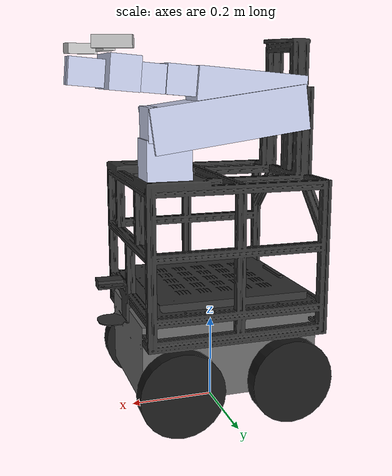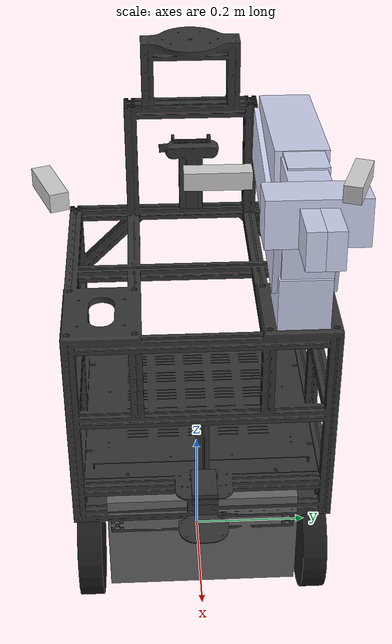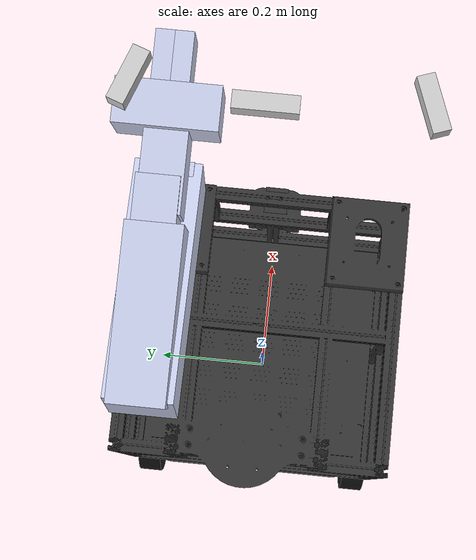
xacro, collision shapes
<?xml version="1.0"?>
<robot xmlns:xacro="http://www.ros.org/wiki/xacro" name="fire_robot">

  <xacro:include filename="$(find fire_robot_description)/urdf/piper_arm_actual.xacro"/>

  <xacro:property name="base_length"  value="0.420"/>
  <xacro:property name="base_width"   value="0.310"/>
  <xacro:property name="base_height"  value="0.184"/>
  <xacro:property name="wheel_radius" value="0.098"/>
  <xacro:property name="wheel_width"  value="0.040"/>
  <xacro:property name="wheelbase"   value="0.262"/>
  <xacro:property name="track"       value="0.37559"/>
  <xacro:property name="base_mass"    value="16.523"/>
  <xacro:property name="wheel_mass"   value="0.477"/>
  <!-- Supplied Clearpath J100 / ROAS2 reference coordinates, expressed in
       base_link. PIPER is centered laterally because this project uses one arm. -->
  <xacro:property name="base_footprint_offset" value="0.0655"/>
  <xacro:property name="wheel_vertical_offset" value="0.0345"/>
  <!-- Mount the perception camera on the forward mast face. The supplied
       bracket mesh origin is behind the cage, where a simulated optical
       sensor is fully occluded by the frame. -->
  <xacro:property name="camera_x"     value="0.2500"/>
  <xacro:property name="camera_y"     value="0.0175"/>
  <xacro:property name="camera_z"     value="0.7890"/>
  <xacro:property name="lidar_x"      value="0.25"/>
  <xacro:property name="lidar_z"      value="0.248"/>
  <xacro:property name="piper_mount_x" value="0.163"/>
  <xacro:property name="piper_mount_y" value="0.15"/>
  <xacro:property name="piper_mount_z" value="0.509"/>
  <xacro:property name="top_structure_z" value="-0.065"/>
  <xacro:property name="camera_pitch" value="0.0"/>
  <xacro:arg name="enable_sim_depth_camera" default="false"/>
  <xacro:arg name="use_piper_ros2_control" default="false"/>

  <xacro:macro name="box_inertia" params="m x y z">
    <inertial>
      <mass value="${m}"/>
      <inertia ixx="${m*(y*y+z*z)/12}" ixy="0" ixz="0"
               iyy="${m*(x*x+z*z)/12}" iyz="0"
               izz="${m*(x*x+y*y)/12}"/>
    </inertial>
  </xacro:macro>

  <xacro:macro name="cylinder_inertia" params="m r h">
    <inertial>
      <mass value="${m}"/>
      <inertia ixx="${m*(3*r*r+h*h)/12}" ixy="0" ixz="0"
               iyy="${m*(3*r*r+h*h)/12}" iyz="0"
               izz="${m*r*r/2}"/>
    </inertial>
  </xacro:macro>

  <!-- ============ base_footprint ============ -->
  <link name="base_footprint"/>

  <joint name="base_footprint_joint" type="fixed">
    <parent link="base_footprint"/>
    <child  link="base_link"/>
    <origin xyz="0 0 ${base_footprint_offset}" rpy="0 0 0"/>
  </joint>

  <!-- ============ 모바일 베이스 ============ -->
  <link name="base_link">
    <inertial>
      <origin xyz="0.012 0.002 0.067" rpy="0 0 0"/>
      <mass value="${base_mass}"/>
      <inertia ixx="0.3136" ixy="-0.0008" ixz="0.0164"
               iyy="0.3922" iyz="-0.0009" izz="0.4485"/>
    </inertial>
    <visual>
      <origin xyz="0 0 -0.0655" rpy="${pi/2} 0 ${pi/2}"/>
      <geometry>
        <mesh filename="package://fire_robot_description/meshes/j100/j100_base.stl"/>
      </geometry>
      <material name="gray"><color rgba="0.4 0.4 0.4 1.0"/></material>
    </visual>
    <collision>
      <origin xyz="0 0 ${base_height/2}" rpy="0 0 0"/>
      <geometry>
        <box size="${base_length} ${base_width} ${base_height}"/>
      </geometry>
    </collision>
  </link>

  <!-- Supplied ROAS2 frame that physically supports the camera and PIPER. -->
  <link name="top_structure">
    <visual>
      <geometry>
        <mesh filename="package://fire_robot_description/meshes/roas2/BASE_FRAME.stl"/>
      </geometry>
      <material name="dark_gray"><color rgba="0.2 0.2 0.2 1.0"/></material>
    </visual>
    <collision>
      <geometry>
        <mesh filename="package://fire_robot_description/meshes/roas2/BASE_FRAME.stl"/>
      </geometry>
    </collision>
  </link>
  <joint name="top_structure_joint" type="fixed">
    <parent link="base_link"/>
    <child link="top_structure"/>
    <origin xyz="0 0 ${top_structure_z}" rpy="0 0 0"/>
  </joint>

  <link name="camera_bracket_link">
    <visual>
      <geometry>
        <mesh filename="package://fire_robot_description/meshes/roas2/D435_BRACKET.stl"/>
      </geometry>
      <material name="dark_gray"/>
    </visual>
    <collision>
      <geometry>
        <mesh filename="package://fire_robot_description/meshes/roas2/D435_BRACKET.stl"/>
      </geometry>
    </collision>
  </link>
  <joint name="camera_bracket_joint" type="fixed">
    <parent link="top_structure"/>
    <child link="camera_bracket_link"/>
    <origin xyz="-0.2 0 0.564" rpy="0 0 0"/>
  </joint>

  <!-- ============ 바퀴 매크로 ============ -->
  <xacro:macro name="wheel" params="name x_pos y_pos">
    <link name="${name}_wheel">
      <inertial>
        <origin xyz="0 0 0" rpy="0 0 0"/>
        <mass value="${wheel_mass}"/>
        <inertia ixx="0.0013" ixy="0" ixz="0"
                 iyy="0.0024" iyz="0" izz="0.0013"/>
      </inertial>
      <visual>
        <origin xyz="0 0 0" rpy="${pi/2} 0 0"/>
        <geometry>
          <mesh filename="package://fire_robot_description/meshes/j100/j100_wheel.stl"/>
        </geometry>
        <material name="black"><color rgba="0.1 0.1 0.1 1.0"/></material>
      </visual>
      <collision>
        <origin xyz="0 0 0" rpy="${pi/2} 0 0"/>
        <geometry>
          <cylinder radius="${wheel_radius}" length="${wheel_width}"/>
        </geometry>
      </collision>
    </link>

    <joint name="${name}_wheel_joint" type="continuous">
      <parent link="base_link"/>
      <child  link="${name}_wheel"/>
      <origin xyz="${x_pos} ${y_pos} ${wheel_vertical_offset}" rpy="0 0 0"/>
      <axis xyz="0 1 0"/>
    </joint>
  </xacro:macro>

  <xacro:wheel name="front_left"  x_pos="${wheelbase/2}" y_pos="${track/2}"/>
  <xacro:wheel name="front_right" x_pos="${wheelbase/2}" y_pos="${-track/2}"/>
  <xacro:wheel name="rear_left"   x_pos="${-wheelbase/2}" y_pos="${track/2}"/>
  <xacro:wheel name="rear_right"  x_pos="${-wheelbase/2}" y_pos="${-track/2}"/>

  <gazebo reference="front_left_wheel"><mu1>0.5</mu1><mu2>0.5</mu2><fdir1>1 0 0</fdir1></gazebo>
  <gazebo reference="front_right_wheel"><mu1>0.5</mu1><mu2>0.5</mu2><fdir1>1 0 0</fdir1></gazebo>
  <gazebo reference="rear_left_wheel"><mu1>0.5</mu1><mu2>0.5</mu2><fdir1>1 0 0</fdir1></gazebo>
  <gazebo reference="rear_right_wheel"><mu1>0.5</mu1><mu2>0.5</mu2><fdir1>1 0 0</fdir1></gazebo>

  <!-- ============ 2D LiDAR ============ -->
  <link name="lidar_link">
    <visual>
      <geometry><box size="0.06 0.04 0.02"/></geometry>
      <material name="dark_gray"><color rgba="0.2 0.2 0.2 1.0"/></material>
    </visual>
    <collision>
      <geometry><box size="0.06 0.04 0.02"/></geometry>
    </collision>
    <inertial>
      <mass value="0.20"/>
      <inertia ixx="0.0001" ixy="0" ixz="0" iyy="0.0001" iyz="0" izz="0.0001"/>
    </inertial>
  </link>

  <joint name="lidar_joint" type="fixed">
    <parent link="top_structure"/>
    <child  link="lidar_link"/>
    <origin xyz="${lidar_x} 0 ${lidar_z - top_structure_z}" rpy="0 0 0"/>
  </joint>

  <!-- ============ RGB-D 카메라 마운트 ============ -->
  <link name="camera_link">
    <visual>
      <geometry><box size="0.02505 0.090 0.025"/></geometry>
      <material name="silver"><color rgba="0.8 0.8 0.8 1.0"/></material>
    </visual>
    <collision>
      <geometry><box size="0.02505 0.090 0.025"/></geometry>
    </collision>
    <inertial>
      <mass value="0.564"/>
      <inertia ixx="0.003881243" ixy="0" ixz="0"
               iyy="0.000498940" iyz="0" izz="0.003879257"/>
    </inertial>
  </link>

  <joint name="camera_joint" type="fixed">
    <parent link="top_structure"/>
    <child  link="camera_link"/>
    <origin xyz="${camera_x} ${camera_y} ${camera_z - top_structure_z}"
            rpy="0 ${camera_pitch} 0"/>
  </joint>

  <!-- 카메라 광학 프레임 (ROS 컨벤션: Z 앞, X 오른쪽) -->
  <link name="camera_color_optical_frame"/>
  <joint name="camera_optical_joint" type="fixed">
    <parent link="camera_link"/>
    <child  link="camera_color_optical_frame"/>
    <origin xyz="0 0 0" rpy="${-pi/2} 0 ${-pi/2}"/>
  </joint>

  <!-- 전방 좌/우 보조 카메라: 벽면 문을 주행 중 미리 보기 위한 45도 시야 -->
  <link name="camera_front_left_link">
    <visual>
      <geometry><box size="0.025 0.080 0.025"/></geometry>
      <material name="silver"><color rgba="0.8 0.8 0.8 1.0"/></material>
    </visual>
    <collision>
      <geometry><box size="0.025 0.080 0.025"/></geometry>
    </collision>
    <inertial>
      <mass value="0.060"/>
      <inertia ixx="0.0001" ixy="0" ixz="0" iyy="0.0001" iyz="0" izz="0.0001"/>
    </inertial>
  </link>

  <joint name="camera_front_left_joint" type="fixed">
    <parent link="top_structure"/>
    <child  link="camera_front_left_link"/>
    <origin xyz="${camera_x + 0.02} 0.20 ${camera_z - top_structure_z}" rpy="0 ${camera_pitch} 1.22173"/>
  </joint>

  <link name="camera_front_left_optical_frame"/>
  <joint name="camera_front_left_optical_joint" type="fixed">
    <parent link="camera_front_left_link"/>
    <child  link="camera_front_left_optical_frame"/>
    <origin xyz="0 0 0" rpy="${-pi/2} 0 ${-pi/2}"/>
  </joint>

  <link name="camera_front_right_link">
    <visual>
      <geometry><box size="0.025 0.080 0.025"/></geometry>
      <material name="silver"><color rgba="0.8 0.8 0.8 1.0"/></material>
    </visual>
    <collision>
      <geometry><box size="0.025 0.080 0.025"/></geometry>
    </collision>
    <inertial>
      <mass value="0.060"/>
      <inertia ixx="0.0001" ixy="0" ixz="0" iyy="0.0001" iyz="0" izz="0.0001"/>
    </inertial>
  </link>

  <joint name="camera_front_right_joint" type="fixed">
    <parent link="top_structure"/>
    <child  link="camera_front_right_link"/>
    <origin xyz="${camera_x + 0.02} -0.20 ${camera_z - top_structure_z}" rpy="0 ${camera_pitch} -1.22173"/>
  </joint>

  <link name="camera_front_right_optical_frame"/>
  <joint name="camera_front_right_optical_joint" type="fixed">
    <parent link="camera_front_right_link"/>
    <child  link="camera_front_right_optical_frame"/>
    <origin xyz="0 0 0" rpy="${-pi/2} 0 ${-pi/2}"/>
  </joint>

  <!-- ============ Depth Camera (RealSense D435 뎁스 모듈) ============ -->
  <!-- D435의 뎁스 모듈은 컬러 모듈과 같은 하우징 내 약 17.5mm 오프셋 -->
  <link name="depth_camera_link">
    <inertial>
      <mass value="0.001"/>
      <inertia ixx="0.000001" ixy="0" ixz="0"
               iyy="0.000001" iyz="0" izz="0.000001"/>
    </inertial>
  </link>
  <joint name="depth_camera_joint" type="fixed">
    <parent link="camera_link"/>
    <child  link="depth_camera_link"/>
    <origin xyz="0 0 0" rpy="0 0 0"/>
  </joint>

  <!-- Depth 광학 프레임 -->
  <link name="depth_optical_frame"/>
  <joint name="depth_optical_joint" type="fixed">
    <parent link="depth_camera_link"/>
    <child  link="depth_optical_frame"/>
    <origin xyz="0 0 0" rpy="${-pi/2} 0 ${-pi/2}"/>
  </joint>

  <!-- Legacy simplified arm is retained only as source history and is omitted
       from generated URDF. The actual PIPER macro below is authoritative. -->
  <xacro:if value="false">
  <!-- ============ PIPER 로봇팔 (비활성 레거시 모델) ============ -->
  <!-- 팔 베이스를 모바일 베이스 위 중앙에 탑재 -->
  <link name="arm_base_link">
    <visual>
      <geometry><cylinder radius="0.04" length="0.06"/></geometry>
      <material name="orange"><color rgba="0.9 0.5 0.1 1.0"/></material>
    </visual>
    <collision>
      <geometry><cylinder radius="0.04" length="0.06"/></geometry>
    </collision>
    <inertial>
      <mass value="0.5"/>
      <inertia ixx="0.001" ixy="0" ixz="0" iyy="0.001" iyz="0" izz="0.001"/>
    </inertial>
  </link>

  <joint name="arm_base_joint" type="fixed">
    <parent link="base_link"/>
    <child  link="arm_base_link"/>
    <origin xyz="0.05 0 ${base_height/2 + 0.03}" rpy="0 0 0"/>
  </joint>

  <!-- Joint 1 - 팔 회전 (Z축) -->
  <link name="arm_link1">
    <visual><geometry><cylinder radius="0.03" length="0.12"/></geometry>
      <material name="orange"><color rgba="0.9 0.5 0.1 1.0"/></material></visual>
    <collision><geometry><cylinder radius="0.03" length="0.12"/></geometry></collision>
    <xacro:cylinder_inertia m="0.4" r="0.03" h="0.12"/>
  </link>
  <joint name="joint1" type="revolute">
    <parent link="arm_base_link"/>
    <child  link="arm_link1"/>
    <origin xyz="0 0 0.06" rpy="0 0 0"/>
    <axis xyz="0 0 1"/>
    <limit lower="-3.14" upper="3.14" effort="30" velocity="1.5"/>
  </joint>

  <!-- Joint 2 - 어깨 (Y축) -->
  <link name="arm_link2">
    <visual><geometry><box size="0.06 0.04 0.25"/></geometry>
      <material name="orange"><color rgba="0.9 0.5 0.1 1.0"/></material></visual>
    <collision><geometry><box size="0.06 0.04 0.25"/></geometry></collision>
    <xacro:box_inertia m="0.5" x="0.06" y="0.04" z="0.25"/>
  </link>
  <joint name="joint2" type="revolute">
    <parent link="arm_link1"/>
    <child  link="arm_link2"/>
    <origin xyz="0 0 0.06" rpy="0 0 0"/>
    <axis xyz="0 1 0"/>
    <limit lower="-2.09" upper="2.09" effort="30" velocity="1.5"/>
  </joint>

  <!-- Joint 3 - 팔꿈치 (Y축) -->
  <link name="arm_link3">
    <visual><geometry><box size="0.05 0.04 0.22"/></geometry>
      <material name="orange"><color rgba="0.9 0.5 0.1 1.0"/></material></visual>
    <collision><geometry><box size="0.05 0.04 0.22"/></geometry></collision>
    <xacro:box_inertia m="0.4" x="0.05" y="0.04" z="0.22"/>
  </link>
  <joint name="joint3" type="revolute">
    <parent link="arm_link2"/>
    <child  link="arm_link3"/>
    <origin xyz="0 0 0.25" rpy="0 0 0"/>
    <axis xyz="0 1 0"/>
    <limit lower="-2.44" upper="2.44" effort="20" velocity="1.5"/>
  </joint>

  <!-- Joint 4 - 손목 Roll (X축) -->
  <link name="arm_link4">
    <visual><geometry><cylinder radius="0.025" length="0.10"/></geometry>
      <material name="orange"><color rgba="0.9 0.5 0.1 1.0"/></material></visual>
    <collision><geometry><cylinder radius="0.025" length="0.10"/></geometry></collision>
    <xacro:cylinder_inertia m="0.2" r="0.025" h="0.10"/>
  </link>
  <joint name="joint4" type="revolute">
    <parent link="arm_link3"/>
    <child  link="arm_link4"/>
    <origin xyz="0 0 0.22" rpy="0 0 0"/>
    <axis xyz="1 0 0"/>
    <limit lower="-3.14" upper="3.14" effort="10" velocity="2.0"/>
  </joint>

  <!-- Joint 5 - 손목 Pitch (Y축) -->
  <link name="arm_link5">
    <visual><geometry><cylinder radius="0.025" length="0.09"/></geometry>
      <material name="orange"><color rgba="0.9 0.5 0.1 1.0"/></material></visual>
    <collision><geometry><cylinder radius="0.025" length="0.09"/></geometry></collision>
    <xacro:cylinder_inertia m="0.2" r="0.025" h="0.09"/>
  </link>
  <joint name="joint5" type="revolute">
    <parent link="arm_link4"/>
    <child  link="arm_link5"/>
    <origin xyz="0 0 0.10" rpy="0 0 0"/>
    <axis xyz="0 1 0"/>
    <limit lower="-1.57" upper="1.57" effort="10" velocity="2.0"/>
  </joint>

  <!-- Joint 6 - 손목 Yaw (Z축) -->
  <link name="arm_link6">
    <visual><geometry><cylinder radius="0.02" length="0.07"/></geometry>
      <material name="orange"><color rgba="0.9 0.5 0.1 1.0"/></material></visual>
    <collision><geometry><cylinder radius="0.02" length="0.07"/></geometry></collision>
    <xacro:cylinder_inertia m="0.15" r="0.02" h="0.07"/>
  </link>
  <joint name="joint6" type="revolute">
    <parent link="arm_link5"/>
    <child  link="arm_link6"/>
    <origin xyz="0 0 0.09" rpy="0 0 0"/>
    <axis xyz="0 0 1"/>
    <limit lower="-3.14" upper="3.14" effort="5" velocity="2.0"/>
  </joint>

  <!-- ============ 그리퍼 ============ -->
  <link name="gripper_base_link">
    <visual><geometry><box size="0.04 0.07 0.04"/></geometry>
      <material name="silver"><color rgba="0.8 0.8 0.8 1.0"/></material></visual>
    <collision><geometry><box size="0.04 0.07 0.04"/></geometry></collision>
    <xacro:box_inertia m="0.1" x="0.04" y="0.07" z="0.04"/>
  </link>
  <joint name="gripper_base_joint" type="fixed">
    <parent link="arm_link6"/>
    <child  link="gripper_base_link"/>
    <origin xyz="0 0 0.07" rpy="0 0 0"/>
  </joint>

  <link name="gripper_finger_left">
    <visual><geometry><box size="0.015 0.01 0.06"/></geometry>
      <material name="silver"><color rgba="0.8 0.8 0.8 1.0"/></material></visual>
    <collision><geometry><box size="0.015 0.01 0.06"/></geometry></collision>
    <xacro:box_inertia m="0.02" x="0.015" y="0.01" z="0.06"/>
  </link>
  <joint name="gripper_left_joint" type="prismatic">
    <parent link="gripper_base_link"/>
    <child  link="gripper_finger_left"/>
    <origin xyz="0 0.025 0.03" rpy="0 0 0"/>
    <axis xyz="0 1 0"/>
    <limit lower="0.0" upper="0.04" effort="5" velocity="0.1"/>
  </joint>

  <link name="gripper_finger_right">
    <visual><geometry><box size="0.015 0.01 0.06"/></geometry>
      <material name="silver"><color rgba="0.8 0.8 0.8 1.0"/></material></visual>
    <collision><geometry><box size="0.015 0.01 0.06"/></geometry></collision>
    <xacro:box_inertia m="0.02" x="0.015" y="0.01" z="0.06"/>
  </link>
  <joint name="gripper_right_joint" type="prismatic">
    <parent link="gripper_base_link"/>
    <child  link="gripper_finger_right"/>
    <origin xyz="0 -0.025 0.03" rpy="0 0 0"/>
    <axis xyz="0 -1 0"/>
    <limit lower="0.0" upper="0.04" effort="5" velocity="0.1"/>
  </joint>

  <gazebo reference="gripper_finger_left">
    <mu1>8.0</mu1>
    <mu2>8.0</mu2>
    <kp>1000000.0</kp>
    <kd>50.0</kd>
    <minDepth>0.001</minDepth>
  </gazebo>

  <gazebo reference="gripper_finger_right">
    <mu1>8.0</mu1>
    <mu2>8.0</mu2>
    <kp>1000000.0</kp>
    <kd>50.0</kd>
    <minDepth>0.001</minDepth>
  </gazebo>
  </xacro:if>

  <xacro:piper_arm_actual
    parent="top_structure"
    mount_xyz="${piper_mount_x} ${piper_mount_y} ${piper_mount_z - top_structure_z}"
    mount_rpy="0 0 0"/>

  <!-- ============ Gazebo Ignition 플러그인 ============ -->

  <!-- 2D LiDAR range sensor (Gazebo uses gpu_lidar internally) -->
  <gazebo reference="lidar_link">
    <sensor name="lidar_sensor" type="gpu_lidar">
      <always_on>true</always_on>
      <visualize>false</visualize>
      <update_rate>12</update_rate>
      <topic>scan</topic>
      <gz_frame_id>lidar_link</gz_frame_id>
      <lidar>
        <scan>
          <horizontal>
            <samples>720</samples>
            <resolution>1</resolution>
            <min_angle>-3.14159</min_angle>
            <max_angle>3.14159</max_angle>
          </horizontal>
          <vertical>
            <samples>1</samples>
            <resolution>1</resolution>
            <min_angle>0</min_angle>
            <max_angle>0</max_angle>
          </vertical>
        </scan>
        <range>
          <min>0.15</min>
          <max>12.0</max>
          <resolution>0.05</resolution>
        </range>
        <noise type="gaussian">
          <mean>0.0</mean>
          <stddev>0.05</stddev>
        </noise>
      </lidar>
    </sensor>
  </gazebo>

  <!-- RGB 카메라 (Ignition camera 센서) -->
  <gazebo reference="camera_link">
    <sensor name="rgb_camera" type="camera">
      <always_on>true</always_on>
      <visualize>false</visualize>
      <update_rate>15</update_rate>
      <topic>camera_raw</topic>
      <gz_frame_id>camera_color_optical_frame</gz_frame_id>
      <camera name="rgb">
        <camera_info_topic>/camera_raw/camera_info</camera_info_topic>
        <horizontal_fov>1.204</horizontal_fov>
        <image>
          <width>320</width>
          <height>240</height>
          <format>R8G8B8</format>
        </image>
        <clip>
          <near>0.1</near>
          <far>10.0</far>
        </clip>
        <noise>
          <type>gaussian</type>
          <mean>0.0</mean>
          <stddev>0.007</stddev>
        </noise>
      </camera>
    </sensor>
  </gazebo>

  <!-- 전방 좌측 카메라 -->
  <gazebo reference="camera_front_left_link">
    <sensor name="rgb_camera_front_left" type="camera">
      <always_on>true</always_on>
      <visualize>false</visualize>
      <update_rate>6</update_rate>
      <topic>camera_front_left_raw</topic>
      <gz_frame_id>camera_front_left_optical_frame</gz_frame_id>
      <camera name="rgb_front_left">
        <camera_info_topic>/camera_front_left_raw/camera_info</camera_info_topic>
        <horizontal_fov>1.204</horizontal_fov>
        <image>
          <width>320</width>
          <height>240</height>
          <format>R8G8B8</format>
        </image>
        <clip>
          <near>0.1</near>
          <far>10.0</far>
        </clip>
        <noise>
          <type>gaussian</type>
          <mean>0.0</mean>
          <stddev>0.007</stddev>
        </noise>
      </camera>
    </sensor>
  </gazebo>

  <!-- 전방 우측 카메라 -->
  <gazebo reference="camera_front_right_link">
    <sensor name="rgb_camera_front_right" type="camera">
      <always_on>true</always_on>
      <visualize>false</visualize>
      <update_rate>6</update_rate>
      <topic>camera_front_right_raw</topic>
      <gz_frame_id>camera_front_right_optical_frame</gz_frame_id>
      <camera name="rgb_front_right">
        <camera_info_topic>/camera_front_right_raw/camera_info</camera_info_topic>
        <horizontal_fov>1.204</horizontal_fov>
        <image>
          <width>320</width>
          <height>240</height>
          <format>R8G8B8</format>
        </image>
        <clip>
          <near>0.1</near>
          <far>10.0</far>
        </clip>
        <noise>
          <type>gaussian</type>
          <mean>0.0</mean>
          <stddev>0.007</stddev>
        </noise>
      </camera>
    </sensor>
  </gazebo>

  <!-- D435 depth imager. RGB is provided by the co-located camera above;
       Fortress depth_camera requires an R_FLOAT32 image buffer. -->
  <xacro:if value="$(arg enable_sim_depth_camera)">
  <gazebo reference="depth_camera_link">
    <sensor name="depth_camera" type="depth_camera">
      <always_on>true</always_on>
      <visualize>false</visualize>
      <update_rate>10</update_rate>
      <topic>depth_camera</topic>
      <gz_frame_id>depth_optical_frame</gz_frame_id>
      <camera name="depth">
        <camera_info_topic>/depth_camera/camera_info</camera_info_topic>
        <horizontal_fov>1.204</horizontal_fov>
        <image>
          <width>320</width>
          <height>240</height>
          <format>R_FLOAT32</format>
        </image>
        <clip>
          <near>0.1</near>
          <far>10.0</far>
        </clip>
        <noise>
          <type>gaussian</type>
          <mean>0.0</mean>
          <stddev>0.003</stddev>
        </noise>
      </camera>
    </sensor>
  </gazebo>
  </xacro:if>

  <!-- J100 base drive is independent from the PIPER arm controller, matching
       the separate Clearpath and AgileX hardware interfaces. -->
  <gazebo>
    <plugin filename="ignition-gazebo-diff-drive-system"
            name="ignition::gazebo::systems::DiffDrive">
        <left_joint>front_left_wheel_joint</left_joint>
        <left_joint>rear_left_wheel_joint</left_joint>
        <right_joint>front_right_wheel_joint</right_joint>
        <right_joint>rear_right_wheel_joint</right_joint>
        <!-- Clearpath j100 reference: track=0.37559 m, wheel_radius=0.098 m -->
        <wheel_separation>0.37559</wheel_separation>
        <wheel_radius>0.098</wheel_radius>
        <odom_publish_frequency>20</odom_publish_frequency>
        <topic>cmd_vel</topic>
        <odom_topic>wheel_odom</odom_topic>
        <tf_topic>wheel_tf</tf_topic>
        <frame_id>odom</frame_id>
        <child_frame_id>base_footprint</child_frame_id>
        <max_linear_acceleration>1.0</max_linear_acceleration>
    </plugin>
  </gazebo>

  <gazebo>
    <plugin filename="ignition-gazebo-odometry-publisher-system"
            name="ignition::gazebo::systems::OdometryPublisher">
      <odom_frame>odom</odom_frame>
      <robot_base_frame>base_footprint</robot_base_frame>
      <odom_topic>odom</odom_topic>
      <tf_topic>tf</tf_topic>
      <odom_publish_frequency>30</odom_publish_frequency>
      <dimensions>2</dimensions>
    </plugin>
  </gazebo>

  <!-- Native joint topics remain available for the archived navigation setup. -->
  <xacro:unless value="$(arg use_piper_ros2_control)">
  <gazebo>
    <plugin filename="gz-sim-joint-state-publisher-system"
            name="gz::sim::systems::JointStatePublisher">
      <topic>joint_states</topic>
    </plugin>
  </gazebo>
  </xacro:unless>

  <!-- Fortress-native position servos provide the physical-contact test path.
       Real hardware keeps the separate AgileX controller/MoveIt path. -->
  <xacro:unless value="$(arg use_piper_ros2_control)">
  <gazebo>
    <plugin filename="ignition-gazebo-joint-position-controller-system"
            name="gz::sim::systems::JointPositionController">
      <joint_name>joint1</joint_name>
      <topic>/fire_robot/sim_arm/joint1_cmd</topic>
      <p_gain>80.0</p_gain>
      <d_gain>1.5</d_gain>
      <cmd_max>60</cmd_max>
      <cmd_min>-60</cmd_min>
    </plugin>
    <plugin filename="ignition-gazebo-joint-position-controller-system"
            name="gz::sim::systems::JointPositionController">
      <joint_name>joint2</joint_name>
      <topic>/fire_robot/sim_arm/joint2_cmd</topic>
      <p_gain>80.0</p_gain>
      <d_gain>1.5</d_gain>
      <cmd_max>60</cmd_max>
      <cmd_min>-60</cmd_min>
    </plugin>
    <plugin filename="ignition-gazebo-joint-position-controller-system"
            name="gz::sim::systems::JointPositionController">
      <joint_name>joint3</joint_name>
      <topic>/fire_robot/sim_arm/joint3_cmd</topic>
      <p_gain>80.0</p_gain>
      <d_gain>1.5</d_gain>
      <cmd_max>60</cmd_max>
      <cmd_min>-60</cmd_min>
    </plugin>
    <plugin filename="ignition-gazebo-joint-position-controller-system"
            name="gz::sim::systems::JointPositionController">
      <joint_name>joint4</joint_name>
      <topic>/fire_robot/sim_arm/joint4_cmd</topic>
      <p_gain>60.0</p_gain>
      <d_gain>1.0</d_gain>
      <cmd_max>30</cmd_max>
      <cmd_min>-30</cmd_min>
    </plugin>
    <plugin filename="ignition-gazebo-joint-position-controller-system"
            name="gz::sim::systems::JointPositionController">
      <joint_name>joint5</joint_name>
      <topic>/fire_robot/sim_arm/joint5_cmd</topic>
      <p_gain>60.0</p_gain>
      <d_gain>1.0</d_gain>
      <cmd_max>30</cmd_max>
      <cmd_min>-30</cmd_min>
    </plugin>
    <plugin filename="ignition-gazebo-joint-position-controller-system"
            name="gz::sim::systems::JointPositionController">
      <joint_name>joint6</joint_name>
      <topic>/fire_robot/sim_arm/joint6_cmd</topic>
      <p_gain>40.0</p_gain>
      <d_gain>0.8</d_gain>
      <cmd_max>20</cmd_max>
      <cmd_min>-20</cmd_min>
    </plugin>
    <plugin filename="ignition-gazebo-joint-position-controller-system"
            name="gz::sim::systems::JointPositionController">
      <joint_name>gripper_left_joint</joint_name>
      <topic>/fire_robot/sim_arm/gripper_left_joint_cmd</topic>
      <!-- Bounded PD: loaded grasp must not accumulate a closing bias. -->
      <p_gain>400.0</p_gain>
      <i_gain>0.0</i_gain>
      <d_gain>6.3</d_gain>
      <cmd_max>8</cmd_max>
      <cmd_min>-8</cmd_min>
    </plugin>
    <plugin filename="ignition-gazebo-joint-position-controller-system"
            name="gz::sim::systems::JointPositionController">
      <joint_name>gripper_right_joint</joint_name>
      <topic>/fire_robot/sim_arm/gripper_right_joint_cmd</topic>
      <p_gain>400.0</p_gain>
      <i_gain>0.0</i_gain>
      <d_gain>6.3</d_gain>
      <cmd_max>8</cmd_max>
      <cmd_min>-8</cmd_min>
    </plugin>
  </gazebo>
  </xacro:unless>

  <xacro:if value="$(arg use_piper_ros2_control)">
    <ros2_control name="PiperGazeboSystem" type="system">
      <hardware>
        <plugin>gz_ros2_control/GazeboSimSystem</plugin>
      </hardware>
      <joint name="joint1">
        <command_interface name="position"><param name="min">-2.618</param><param name="max">2.168</param></command_interface>
        <state_interface name="position"><param name="initial_value">0.0</param></state_interface>
        <state_interface name="velocity"/>
        <state_interface name="effort"/>
      </joint>
      <joint name="joint2">
        <command_interface name="position"><param name="min">0.0</param><param name="max">3.14</param></command_interface>
        <state_interface name="position"><param name="initial_value">0.0</param></state_interface>
        <state_interface name="velocity"/>
        <state_interface name="effort"/>
      </joint>
      <joint name="joint3">
        <command_interface name="position"><param name="min">-2.967</param><param name="max">0.0</param></command_interface>
        <state_interface name="position"><param name="initial_value">0.0</param></state_interface>
        <state_interface name="velocity"/>
        <state_interface name="effort"/>
      </joint>
      <joint name="joint4">
        <command_interface name="position"><param name="min">-1.745</param><param name="max">1.745</param></command_interface>
        <state_interface name="position"><param name="initial_value">0.0</param></state_interface>
        <state_interface name="velocity"/>
        <state_interface name="effort"/>
      </joint>
      <joint name="joint5">
        <command_interface name="position"><param name="min">-1.22</param><param name="max">1.22</param></command_interface>
        <state_interface name="position"><param name="initial_value">0.0</param></state_interface>
        <state_interface name="velocity"/>
        <state_interface name="effort"/>
      </joint>
      <joint name="joint6">
        <command_interface name="position"><param name="min">-2.0944</param><param name="max">2.0944</param></command_interface>
        <state_interface name="position"><param name="initial_value">0.0</param></state_interface>
        <state_interface name="velocity"/>
        <state_interface name="effort"/>
      </joint>
      <joint name="gripper_left_joint">
        <command_interface name="position"><param name="min">0.0</param><param name="max">0.035</param></command_interface>
        <state_interface name="position"><param name="initial_value">0.035</param></state_interface>
        <state_interface name="velocity"/>
      </joint>
      <joint name="gripper_right_joint">
        <command_interface name="position"><param name="min">-0.035</param><param name="max">0.0</param></command_interface>
        <state_interface name="position"><param name="initial_value">-0.035</param></state_interface>
        <state_interface name="velocity"/>
      </joint>
    </ros2_control>

    <gazebo>
      <plugin filename="gz_ros2_control-system"
              name="gz_ros2_control::GazeboSimROS2ControlPlugin">
        <parameters>$(find fire_robot_description)/config/piper_sim_controllers.yaml</parameters>
      </plugin>
    </gazebo>
  </xacro:if>

</robot>

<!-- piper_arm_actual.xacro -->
<robot xmlns:xacro="http://www.ros.org/wiki/xacro">
  <xacro:macro name="piper_actual_link"
               params="name mesh mass ixyz ioff collision_xyz collision_size">
    <link name="${name}">
      <inertial>
        <origin xyz="${ioff}" rpy="0 0 0"/>
        <mass value="${mass}"/>
        <inertia ixx="${ixyz[0]}" ixy="${ixyz[1]}" ixz="${ixyz[2]}"
                 iyy="${ixyz[3]}" iyz="${ixyz[4]}" izz="${ixyz[5]}"/>
      </inertial>
      <visual>
        <geometry>
          <mesh filename="package://fire_robot_description/meshes/piper/${mesh}"/>
        </geometry>
        <material name="piper_white">
          <color rgba="0.7921568627 0.8196078431 0.9333333333 1"/>
        </material>
      </visual>
      <collision>
        <origin xyz="${collision_xyz}" rpy="0 0 0"/>
        <geometry>
          <box size="${collision_size}"/>
        </geometry>
      </collision>
    </link>
  </xacro:macro>

  <xacro:macro name="piper_arm_actual" params="parent mount_xyz mount_rpy">
    <xacro:piper_actual_link
      name="arm_base_link" mesh="base_link.STL" mass="1.02"
      ioff="-0.0047364116 0.0000256829 0.0414515180"
      collision_xyz="-0.00925 0 0.043" collision_size="0.0985 0.0800 0.0860"
      ixyz="${[0.00267433, -0.00000073, -0.00017389, 0.00282612, 0.00000040, 0.00089624]}"/>
    <joint name="arm_base_joint" type="fixed">
      <parent link="${parent}"/>
      <child link="arm_base_link"/>
      <origin xyz="${mount_xyz}" rpy="${mount_rpy}"/>
    </joint>

    <xacro:piper_actual_link
      name="arm_link1" mesh="link1.STL" mass="0.71"
      ioff="0.0001215047 0.0001046322 -0.0043859731"
      collision_xyz="0.00005 0.00200 -0.00650" collision_size="0.0719 0.0775 0.0730"
      ixyz="${[0.00048916, -0.00000036, -0.00000224, 0.00040472, -0.00000242, 0.00043982]}"/>
    <joint name="joint1" type="revolute">
      <origin xyz="0 0 0.123" rpy="0 0 0"/>
      <parent link="arm_base_link"/>
      <child link="arm_link1"/>
      <axis xyz="0 0 1"/>
      <limit lower="-2.618" upper="2.168" effort="100" velocity="5"/>
      <dynamics damping="0.08" friction="0.02"/>
    </joint>

    <xacro:piper_actual_link
      name="arm_link2" mesh="link2.STL" mass="1.17"
      ioff="0.1986661452 -0.0109269241 0.0014212171"
      collision_xyz="0.14253 -0.01655 0" collision_size="0.3480 0.0966 0.0970"
      ixyz="${[0.00116918, -0.00180037, 0.00025146, 0.06785384, -0.00000455, 0.06774489]}"/>
    <joint name="joint2" type="revolute">
      <origin xyz="0 0 0" rpy="1.5708 -0.1359 -3.1416"/>
      <parent link="arm_link1"/>
      <child link="arm_link2"/>
      <axis xyz="0 0 1"/>
      <limit lower="0" upper="3.14" effort="100" velocity="5"/>
      <dynamics damping="0.10" friction="0.025"/>
    </joint>

    <xacro:piper_actual_link
      name="arm_link3" mesh="link3.STL" mass="0.5"
      ioff="-0.0202737662 -0.1339149959 -0.0004586827"
      collision_xyz="-0.01311 -0.09239 0.00038" collision_size="0.0861 0.2448 0.0808"
      ixyz="${[0.01361711, 0.00165794, -0.00000048, 0.00045024, -0.00000045, 0.01380322]}"/>
    <joint name="joint3" type="revolute">
      <origin xyz="0.28503 0 0" rpy="0 0 -1.7939"/>
      <parent link="arm_link2"/>
      <child link="arm_link3"/>
      <axis xyz="0 0 1"/>
      <limit lower="-2.967" upper="0" effort="100" velocity="5"/>
      <dynamics damping="0.08" friction="0.02"/>
    </joint>

    <xacro:piper_actual_link
      name="arm_link4" mesh="link4.STL" mass="0.38"
      ioff="-0.0000966636 0.0008760645 -0.0049688090"
      collision_xyz="-0.00152 0.00204 -0.00378" collision_size="0.0628 0.0611 0.0645"
      ixyz="${[0.00018501, 0.00000054, 0.00000120, 0.00018965, -0.00000841, 0.00015484]}"/>
    <joint name="joint4" type="revolute">
      <origin xyz="-0.021984 -0.25075 0" rpy="1.5708 0 0"/>
      <parent link="arm_link3"/>
      <child link="arm_link4"/>
      <axis xyz="0 0 1"/>
      <limit lower="-1.745" upper="1.745" effort="100" velocity="5"/>
      <dynamics damping="0.05" friction="0.015"/>
    </joint>

    <xacro:piper_actual_link
      name="arm_link5" mesh="link5.STL" mass="0.383"
      ioff="-0.0000410554 -0.0566486692 -0.0037205792"
      collision_xyz="0 -0.03326 -0.00196" collision_size="0.0600 0.1135 0.0610"
      ixyz="${[0.00166169, 0.00000006, -0.00000007, 0.00018510, 0.00001026, 0.00164321]}"/>
    <joint name="joint5" type="revolute">
      <origin xyz="0 0 0" rpy="-1.5708 0 0"/>
      <parent link="arm_link4"/>
      <child link="arm_link5"/>
      <axis xyz="0 0 1"/>
      <limit lower="-1.22" upper="1.22" effort="100" velocity="5"/>
      <dynamics damping="0.04" friction="0.01"/>
    </joint>

    <xacro:piper_actual_link
      name="arm_link6" mesh="link6.STL" mass="0.0069908961"
      ioff="-0.0000882591 0.0000090598 -0.002"
      collision_xyz="-0.00006 0 -0.002" collision_size="0.0350 0.0350 0.0040"
      ixyz="${[0.0000005730, 0.0, 0.0, 0.0000005730, 0.0, 0.0000010674]}"/>
    <joint name="joint6" type="revolute">
      <origin xyz="0.000088259 -0.091 0" rpy="1.5708 0 0"/>
      <parent link="arm_link5"/>
      <child link="arm_link6"/>
      <axis xyz="0 0 1"/>
      <limit lower="-2.0944" upper="2.0944" effort="100" velocity="3"/>
      <dynamics damping="0.03" friction="0.008"/>
    </joint>

    <xacro:piper_actual_link
      name="gripper_base_link" mesh="gripper_base.STL" mass="0.45"
      ioff="-0.0001838072 0.0000805033 0.0321436690"
      collision_xyz="-0.00475 0 0.03150" collision_size="0.0705 0.1450 0.0630"
      ixyz="${[0.00092934, 0.00000034, -0.00000738, 0.00071447, 0.00000005, 0.00039442]}"/>
    <joint name="gripper_base_joint" type="fixed">
      <parent link="arm_link6"/>
      <child link="gripper_base_link"/>
      <origin xyz="0 0 0" rpy="0 0 0"/>
    </joint>

    <!-- Official joint7/joint8 geometry, retaining project gripper joint names. -->
    <xacro:piper_actual_link
      name="gripper_finger_left" mesh="link7.STL" mass="0.025"
      ioff="0.0006512319 -0.0491929869 0.0097225877"
      collision_xyz="0 -0.03825 0.01325" collision_size="0.0560 0.0765 0.0265"
      ixyz="${[0.00001366, 0.0, 0.0, 0.00000800, 0.0, 0.00001873]}"/>
    <joint name="gripper_left_joint" type="prismatic">
      <origin xyz="0 0 0.1358" rpy="1.5708 0 0"/>
      <parent link="gripper_base_link"/>
      <child link="gripper_finger_left"/>
      <axis xyz="0 0 1"/>
      <limit lower="0" upper="0.035" effort="10" velocity="1"/>
      <dynamics damping="0.04" friction="0.02"/>
    </joint>

    <xacro:piper_actual_link
      name="gripper_finger_right" mesh="link8.STL" mass="0.025"
      ioff="0.0006512319 -0.0491929869 0.0097225877"
      collision_xyz="0 -0.03825 0.01325" collision_size="0.0560 0.0765 0.0265"
      ixyz="${[0.00001366, 0.0, 0.0, 0.00000800, 0.0, 0.00001873]}"/>
    <joint name="gripper_right_joint" type="prismatic">
      <origin xyz="0 0 0.1358" rpy="1.5708 0 -3.1416"/>
      <parent link="gripper_base_link"/>
      <child link="gripper_finger_right"/>
      <axis xyz="0 0 -1"/>
      <limit lower="-0.035" upper="0" effort="10" velocity="1"/>
      <dynamics damping="0.04" friction="0.02"/>
    </joint>

    <gazebo reference="gripper_finger_left">
      <mu1>1.2</mu1>
      <mu2>1.2</mu2>
      <kp>500000.0</kp>
      <kd>40.0</kd>
      <minDepth>0.0005</minDepth>
    </gazebo>
    <gazebo reference="gripper_finger_right">
      <mu1>1.2</mu1>
      <mu2>1.2</mu2>
      <kp>500000.0</kp>
      <kd>40.0</kd>
      <minDepth>0.0005</minDepth>
    </gazebo>
  </xacro:macro>
</robot>
